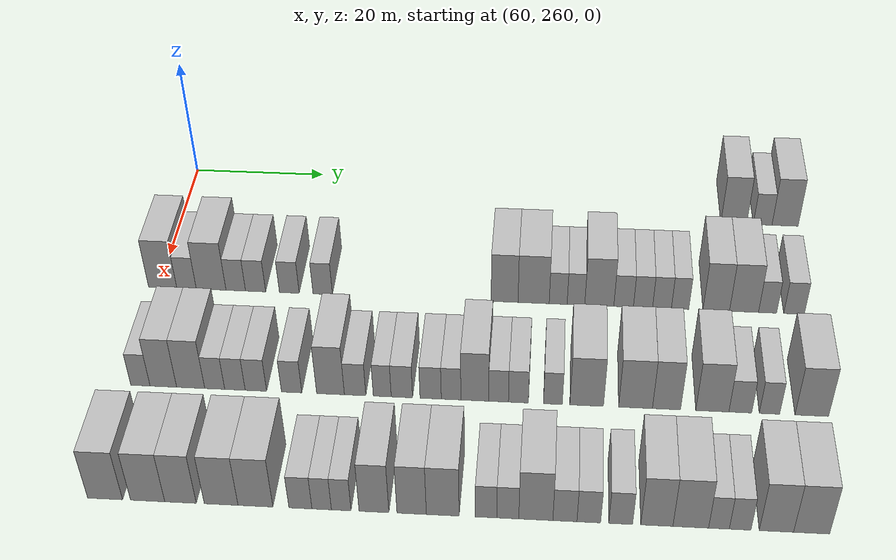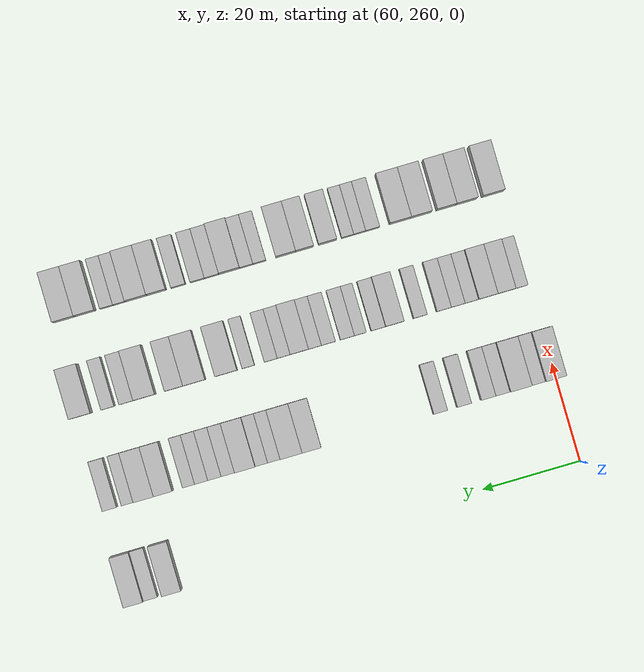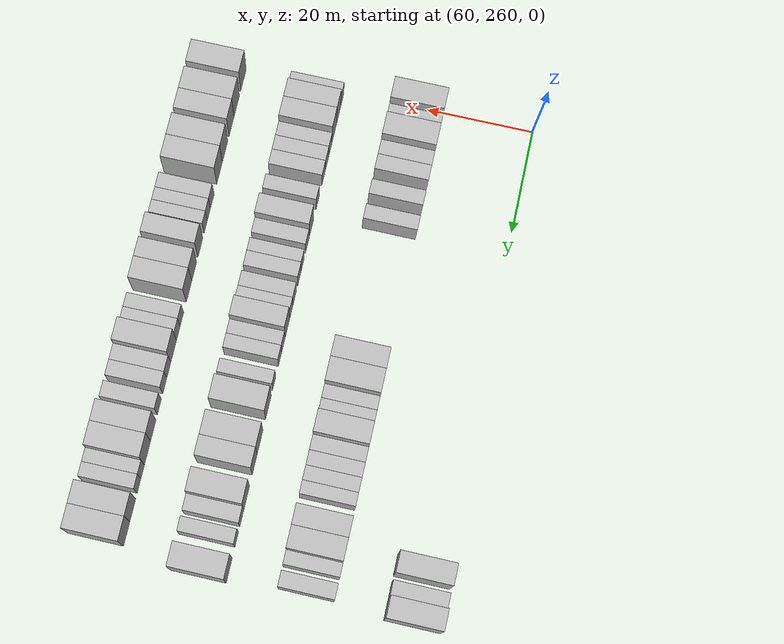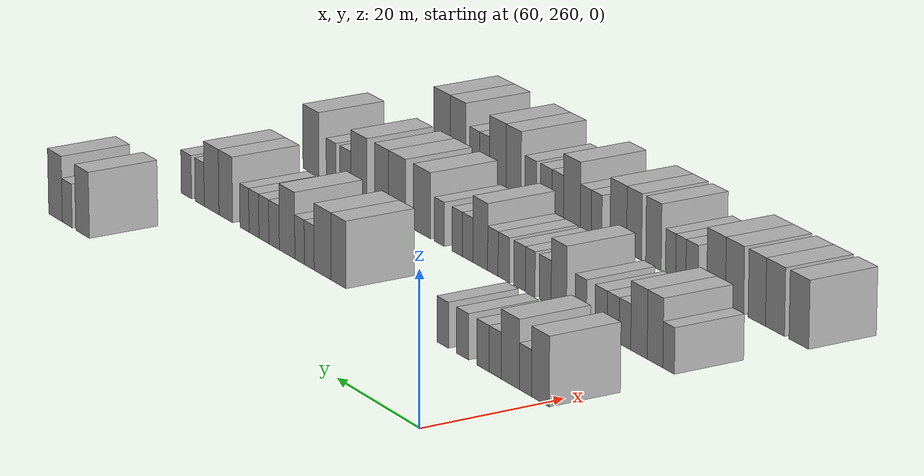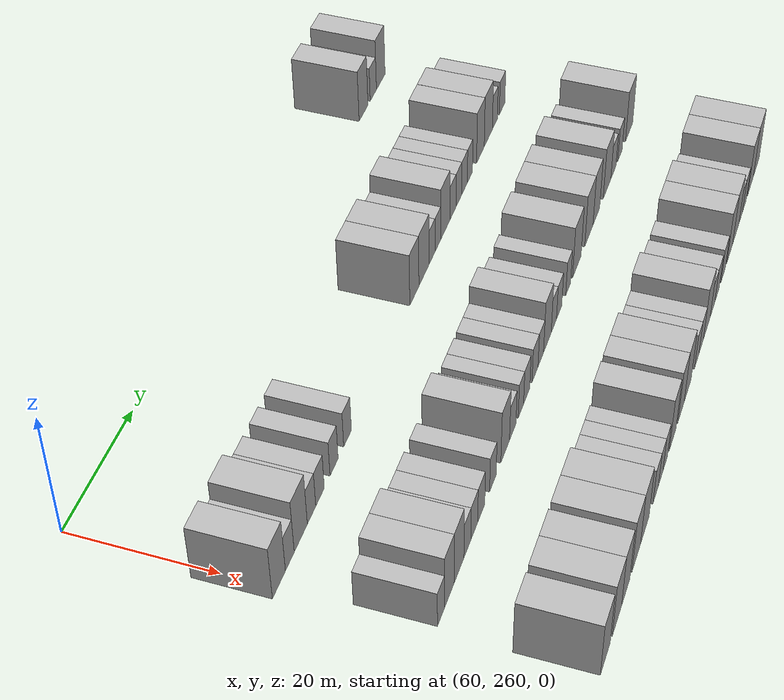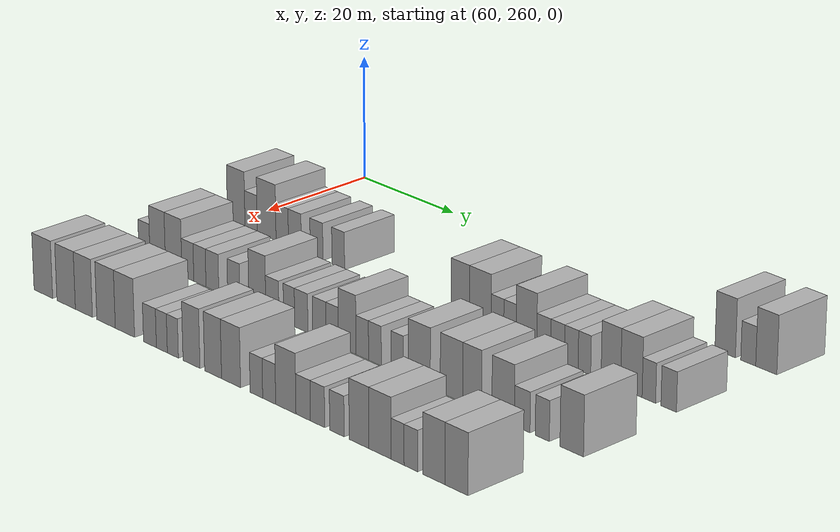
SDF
<sdf version="1.6">
 <world name="default">
  <model name="building_522">
   <static>1</static>
   <pose>63.0000 343.8671 0 0.000000 0.000000 0.000000</pose>
   <link name="link">
    <pose>0 0 4.50 0 0 0</pose>
    <collision name="collision"><geometry><box><size>10.0000 3.9004 9.0000</size></box></geometry></collision>
    <visual name="visual">
     <cast_shadows>0</cast_shadows>
     <geometry><box><size>10.0000 3.9004 9.0000</size></box></geometry>
     <material>
      <script>
       <uri>model://HANNAS_wall/materials/scripts</uri>
       <uri>model://HANNAS_wall/materials/textures</uri>
       <name>vrc/HANNAS_wall</name>
      </script>
     </material>
    </visual>
   </link>
  </model>
  <model name="building_523">
   <static>1</static>
   <pose>63.0000 348.2247 0 0.000000 0.000000 0.000000</pose>
   <link name="link">
    <pose>0 0 3.00 0 0 0</pose>
    <collision name="collision"><geometry><box><size>10.0000 2.8149 6.0000</size></box></geometry></collision>
    <visual name="visual">
     <cast_shadows>0</cast_shadows>
     <geometry><box><size>10.0000 2.8149 6.0000</size></box></geometry>
     <material>
      <script>
       <uri>model://HANNAS_wall/materials/scripts</uri>
       <uri>model://HANNAS_wall/materials/textures</uri>
       <name>vrc/HANNAS_wall</name>
      </script>
     </material>
    </visual>
   </link>
  </model>
  <model name="building_524">
   <static>1</static>
   <pose>63.0000 351.5997 0 0.000000 0.000000 0.000000</pose>
   <link name="link">
    <pose>0 0 4.50 0 0 0</pose>
    <collision name="collision"><geometry><box><size>10.0000 3.9350 9.0000</size></box></geometry></collision>
    <visual name="visual">
     <cast_shadows>0</cast_shadows>
     <geometry><box><size>10.0000 3.9350 9.0000</size></box></geometry>
     <material>
      <script>
       <uri>model://HANNAS_wall/materials/scripts</uri>
       <uri>model://HANNAS_wall/materials/textures</uri>
       <name>vrc/HANNAS_wall</name>
      </script>
     </material>
    </visual>
   </link>
  </model>
  <model name="building_676">
   <static>1</static>
   <pose>82.0000 260.5434 0 0.000000 0.000000 0.000000</pose>
   <link name="link">
    <pose>0 0 4.50 0 0 0</pose>
    <collision name="collision"><geometry><box><size>10.0000 4.1204 9.0000</size></box></geometry></collision>
    <visual name="visual">
     <cast_shadows>0</cast_shadows>
     <geometry><box><size>10.0000 4.1204 9.0000</size></box></geometry>
     <material>
      <script>
       <uri>model://HANNAS_wall/materials/scripts</uri>
       <uri>model://HANNAS_wall/materials/textures</uri>
       <name>vrc/HANNAS_wall</name>
      </script>
     </material>
    </visual>
   </link>
  </model>
  <model name="building_677">
   <static>1</static>
   <pose>82.0000 264.0253 0 0.000000 0.000000 0.000000</pose>
   <link name="link">
    <pose>0 0 3.00 0 0 0</pose>
    <collision name="collision"><geometry><box><size>10.0000 2.8435 6.0000</size></box></geometry></collision>
    <visual name="visual">
     <cast_shadows>0</cast_shadows>
     <geometry><box><size>10.0000 2.8435 6.0000</size></box></geometry>
     <material>
      <script>
       <uri>model://HANNAS_wall/materials/scripts</uri>
       <uri>model://HANNAS_wall/materials/textures</uri>
       <name>vrc/HANNAS_wall</name>
      </script>
     </material>
    </visual>
   </link>
  </model>
  <model name="building_678">
   <static>1</static>
   <pose>82.0000 267.6121 0 0.000000 0.000000 0.000000</pose>
   <link name="link">
    <pose>0 0 4.50 0 0 0</pose>
    <collision name="collision"><geometry><box><size>10.0000 4.3301 9.0000</size></box></geometry></collision>
    <visual name="visual">
     <cast_shadows>0</cast_shadows>
     <geometry><box><size>10.0000 4.3301 9.0000</size></box></geometry>
     <material>
      <script>
       <uri>model://HANNAS_wall/materials/scripts</uri>
       <uri>model://HANNAS_wall/materials/textures</uri>
       <name>vrc/HANNAS_wall</name>
      </script>
     </material>
    </visual>
   </link>
  </model>
  <model name="building_679">
   <static>1</static>
   <pose>82.0000 271.1962 0 0.000000 0.000000 0.000000</pose>
   <link name="link">
    <pose>0 0 3.00 0 0 0</pose>
    <collision name="collision"><geometry><box><size>10.0000 2.8381 6.0000</size></box></geometry></collision>
    <visual name="visual">
     <cast_shadows>0</cast_shadows>
     <geometry><box><size>10.0000 2.8381 6.0000</size></box></geometry>
     <material>
      <script>
       <uri>model://HANNAS_wall/materials/scripts</uri>
       <uri>model://HANNAS_wall/materials/textures</uri>
       <name>vrc/HANNAS_wall</name>
      </script>
     </material>
    </visual>
   </link>
  </model>
  <model name="building_680">
   <static>1</static>
   <pose>82.0000 274.0770 0 0.000000 0.000000 0.000000</pose>
   <link name="link">
    <pose>0 0 3.00 0 0 0</pose>
    <collision name="collision"><geometry><box><size>10.0000 2.9234 6.0000</size></box></geometry></collision>
    <visual name="visual">
     <cast_shadows>0</cast_shadows>
     <geometry><box><size>10.0000 2.9234 6.0000</size></box></geometry>
     <material>
      <script>
       <uri>model://HANNAS_wall/materials/scripts</uri>
       <uri>model://HANNAS_wall/materials/textures</uri>
       <name>vrc/HANNAS_wall</name>
      </script>
     </material>
    </visual>
   </link>
  </model>
  <model name="building_681">
   <static>1</static>
   <pose>82.0000 278.9706 0 0.000000 0.000000 0.000000</pose>
   <link name="link">
    <pose>0 0 3.00 0 0 0</pose>
    <collision name="collision"><geometry><box><size>10.0000 2.8638 6.0000</size></box></geometry></collision>
    <visual name="visual">
     <cast_shadows>0</cast_shadows>
     <geometry><box><size>10.0000 2.8638 6.0000</size></box></geometry>
     <material>
      <script>
       <uri>model://HANNAS_wall/materials/scripts</uri>
       <uri>model://HANNAS_wall/materials/textures</uri>
       <name>vrc/HANNAS_wall</name>
      </script>
     </material>
    </visual>
   </link>
  </model>
  <model name="building_682">
   <static>1</static>
   <pose>82.0000 283.8026 0 0.000000 0.000000 0.000000</pose>
   <link name="link">
    <pose>0 0 3.00 0 0 0</pose>
    <collision name="collision"><geometry><box><size>10.0000 2.8003 6.0000</size></box></geometry></collision>
    <visual name="visual">
     <cast_shadows>0</cast_shadows>
     <geometry><box><size>10.0000 2.8003 6.0000</size></box></geometry>
     <material>
      <script>
       <uri>model://HANNAS_wall/materials/scripts</uri>
       <uri>model://HANNAS_wall/materials/textures</uri>
       <name>vrc/HANNAS_wall</name>
      </script>
     </material>
    </visual>
   </link>
  </model>
  <model name="building_683">
   <static>1</static>
   <pose>82.0000 309.9607 0 0.000000 0.000000 0.000000</pose>
   <link name="link">
    <pose>0 0 4.50 0 0 0</pose>
    <collision name="collision"><geometry><box><size>10.0000 3.8386 9.0000</size></box></geometry></collision>
    <visual name="visual">
     <cast_shadows>0</cast_shadows>
     <geometry><box><size>10.0000 3.8386 9.0000</size></box></geometry>
     <material>
      <script>
       <uri>model://HANNAS_wall/materials/scripts</uri>
       <uri>model://HANNAS_wall/materials/textures</uri>
       <name>vrc/HANNAS_wall</name>
      </script>
     </material>
    </visual>
   </link>
  </model>
  <model name="building_684">
   <static>1</static>
   <pose>82.0000 314.1011 0 0.000000 0.000000 0.000000</pose>
   <link name="link">
    <pose>0 0 4.50 0 0 0</pose>
    <collision name="collision"><geometry><box><size>10.0000 4.4422 9.0000</size></box></geometry></collision>
    <visual name="visual">
     <cast_shadows>0</cast_shadows>
     <geometry><box><size>10.0000 4.4422 9.0000</size></box></geometry>
     <material>
      <script>
       <uri>model://HANNAS_wall/materials/scripts</uri>
       <uri>model://HANNAS_wall/materials/textures</uri>
       <name>vrc/HANNAS_wall</name>
      </script>
     </material>
    </visual>
   </link>
  </model>
  <model name="building_685">
   <static>1</static>
   <pose>82.0000 317.5993 0 0.000000 0.000000 0.000000</pose>
   <link name="link">
    <pose>0 0 3.00 0 0 0</pose>
    <collision name="collision"><geometry><box><size>10.0000 2.5542 6.0000</size></box></geometry></collision>
    <visual name="visual">
     <cast_shadows>0</cast_shadows>
     <geometry><box><size>10.0000 2.5542 6.0000</size></box></geometry>
     <material>
      <script>
       <uri>model://HANNAS_wall/materials/scripts</uri>
       <uri>model://HANNAS_wall/materials/textures</uri>
       <name>vrc/HANNAS_wall</name>
      </script>
     </material>
    </visual>
   </link>
  </model>
  <model name="building_686">
   <static>1</static>
   <pose>82.0000 320.1300 0 0.000000 0.000000 0.000000</pose>
   <link name="link">
    <pose>0 0 3.00 0 0 0</pose>
    <collision name="collision"><geometry><box><size>10.0000 2.5072 6.0000</size></box></geometry></collision>
    <visual name="visual">
     <cast_shadows>0</cast_shadows>
     <geometry><box><size>10.0000 2.5072 6.0000</size></box></geometry>
     <material>
      <script>
       <uri>model://HANNAS_wall/materials/scripts</uri>
       <uri>model://HANNAS_wall/materials/textures</uri>
       <name>vrc/HANNAS_wall</name>
      </script>
     </material>
    </visual>
   </link>
  </model>
  <model name="building_687">
   <static>1</static>
   <pose>82.0000 323.4529 0 0.000000 0.000000 0.000000</pose>
   <link name="link">
    <pose>0 0 4.50 0 0 0</pose>
    <collision name="collision"><geometry><box><size>10.0000 4.1386 9.0000</size></box></geometry></collision>
    <visual name="visual">
     <cast_shadows>0</cast_shadows>
     <geometry><box><size>10.0000 4.1386 9.0000</size></box></geometry>
     <material>
      <script>
       <uri>model://HANNAS_wall/materials/scripts</uri>
       <uri>model://HANNAS_wall/materials/textures</uri>
       <name>vrc/HANNAS_wall</name>
      </script>
     </material>
    </visual>
   </link>
  </model>
  <model name="building_688">
   <static>1</static>
   <pose>82.0000 326.9126 0 0.000000 0.000000 0.000000</pose>
   <link name="link">
    <pose>0 0 3.00 0 0 0</pose>
    <collision name="collision"><geometry><box><size>10.0000 2.7808 6.0000</size></box></geometry></collision>
    <visual name="visual">
     <cast_shadows>0</cast_shadows>
     <geometry><box><size>10.0000 2.7808 6.0000</size></box></geometry>
     <material>
      <script>
       <uri>model://HANNAS_wall/materials/scripts</uri>
       <uri>model://HANNAS_wall/materials/textures</uri>
       <name>vrc/HANNAS_wall</name>
      </script>
     </material>
    </visual>
   </link>
  </model>
  <model name="building_689">
   <static>1</static>
   <pose>82.0000 329.6565 0 0.000000 0.000000 0.000000</pose>
   <link name="link">
    <pose>0 0 3.00 0 0 0</pose>
    <collision name="collision"><geometry><box><size>10.0000 2.7070 6.0000</size></box></geometry></collision>
    <visual name="visual">
     <cast_shadows>0</cast_shadows>
     <geometry><box><size>10.0000 2.7070 6.0000</size></box></geometry>
     <material>
      <script>
       <uri>model://HANNAS_wall/materials/scripts</uri>
       <uri>model://HANNAS_wall/materials/textures</uri>
       <name>vrc/HANNAS_wall</name>
      </script>
     </material>
    </visual>
   </link>
  </model>
  <model name="building_690">
   <static>1</static>
   <pose>82.0000 332.3422 0 0.000000 0.000000 0.000000</pose>
   <link name="link">
    <pose>0 0 3.00 0 0 0</pose>
    <collision name="collision"><geometry><box><size>10.0000 2.6645 6.0000</size></box></geometry></collision>
    <visual name="visual">
     <cast_shadows>0</cast_shadows>
     <geometry><box><size>10.0000 2.6645 6.0000</size></box></geometry>
     <material>
      <script>
       <uri>model://HANNAS_wall/materials/scripts</uri>
       <uri>model://HANNAS_wall/materials/textures</uri>
       <name>vrc/HANNAS_wall</name>
      </script>
     </material>
    </visual>
   </link>
  </model>
  <model name="building_691">
   <static>1</static>
   <pose>82.0000 334.9056 0 0.000000 0.000000 0.000000</pose>
   <link name="link">
    <pose>0 0 3.00 0 0 0</pose>
    <collision name="collision"><geometry><box><size>10.0000 2.4622 6.0000</size></box></geometry></collision>
    <visual name="visual">
     <cast_shadows>0</cast_shadows>
     <geometry><box><size>10.0000 2.4622 6.0000</size></box></geometry>
     <material>
      <script>
       <uri>model://HANNAS_wall/materials/scripts</uri>
       <uri>model://HANNAS_wall/materials/textures</uri>
       <name>vrc/HANNAS_wall</name>
      </script>
     </material>
    </visual>
   </link>
  </model>
  <model name="building_692">
   <static>1</static>
   <pose>82.0000 340.0133 0 0.000000 0.000000 0.000000</pose>
   <link name="link">
    <pose>0 0 4.50 0 0 0</pose>
    <collision name="collision"><geometry><box><size>10.0000 3.7532 9.0000</size></box></geometry></collision>
    <visual name="visual">
     <cast_shadows>0</cast_shadows>
     <geometry><box><size>10.0000 3.7532 9.0000</size></box></geometry>
     <material>
      <script>
       <uri>model://HANNAS_wall/materials/scripts</uri>
       <uri>model://HANNAS_wall/materials/textures</uri>
       <name>vrc/HANNAS_wall</name>
      </script>
     </material>
    </visual>
   </link>
  </model>
  <model name="building_693">
   <static>1</static>
   <pose>82.0000 343.9332 0 0.000000 0.000000 0.000000</pose>
   <link name="link">
    <pose>0 0 4.50 0 0 0</pose>
    <collision name="collision"><geometry><box><size>10.0000 4.0864 9.0000</size></box></geometry></collision>
    <visual name="visual">
     <cast_shadows>0</cast_shadows>
     <geometry><box><size>10.0000 4.0864 9.0000</size></box></geometry>
     <material>
      <script>
       <uri>model://HANNAS_wall/materials/scripts</uri>
       <uri>model://HANNAS_wall/materials/textures</uri>
       <name>vrc/HANNAS_wall</name>
      </script>
     </material>
    </visual>
   </link>
  </model>
  <model name="building_694">
   <static>1</static>
   <pose>82.0000 347.2513 0 0.000000 0.000000 0.000000</pose>
   <link name="link">
    <pose>0 0 3.00 0 0 0</pose>
    <collision name="collision"><geometry><box><size>10.0000 2.5499 6.0000</size></box></geometry></collision>
    <visual name="visual">
     <cast_shadows>0</cast_shadows>
     <geometry><box><size>10.0000 2.5499 6.0000</size></box></geometry>
     <material>
      <script>
       <uri>model://HANNAS_wall/materials/scripts</uri>
       <uri>model://HANNAS_wall/materials/textures</uri>
       <name>vrc/HANNAS_wall</name>
      </script>
     </material>
    </visual>
   </link>
  </model>
  <model name="building_695">
   <static>1</static>
   <pose>82.0000 350.9714 0 0.000000 0.000000 0.000000</pose>
   <link name="link">
    <pose>0 0 3.00 0 0 0</pose>
    <collision name="collision"><geometry><box><size>10.0000 2.8904 6.0000</size></box></geometry></collision>
    <visual name="visual">
     <cast_shadows>0</cast_shadows>
     <geometry><box><size>10.0000 2.8904 6.0000</size></box></geometry>
     <material>
      <script>
       <uri>model://HANNAS_wall/materials/scripts</uri>
       <uri>model://HANNAS_wall/materials/textures</uri>
       <name>vrc/HANNAS_wall</name>
      </script>
     </material>
    </visual>
   </link>
  </model>
  <model name="building_848">
   <static>1</static>
   <pose>101.0000 261.8542 0 0.000000 0.000000 0.000000</pose>
   <link name="link">
    <pose>0 0 3.00 0 0 0</pose>
    <collision name="collision"><geometry><box><size>10.0000 2.6184 6.0000</size></box></geometry></collision>
    <visual name="visual">
     <cast_shadows>0</cast_shadows>
     <geometry><box><size>10.0000 2.6184 6.0000</size></box></geometry>
     <material>
      <script>
       <uri>model://HANNAS_wall/materials/scripts</uri>
       <uri>model://HANNAS_wall/materials/textures</uri>
       <name>vrc/HANNAS_wall</name>
      </script>
     </material>
    </visual>
   </link>
  </model>
  <model name="building_849">
   <static>1</static>
   <pose>101.0000 264.9686 0 0.000000 0.000000 0.000000</pose>
   <link name="link">
    <pose>0 0 4.50 0 0 0</pose>
    <collision name="collision"><geometry><box><size>10.0000 3.6103 9.0000</size></box></geometry></collision>
    <visual name="visual">
     <cast_shadows>0</cast_shadows>
     <geometry><box><size>10.0000 3.6103 9.0000</size></box></geometry>
     <material>
      <script>
       <uri>model://HANNAS_wall/materials/scripts</uri>
       <uri>model://HANNAS_wall/materials/textures</uri>
       <name>vrc/HANNAS_wall</name>
      </script>
     </material>
    </visual>
   </link>
  </model>
  <model name="building_850">
   <static>1</static>
   <pose>101.0000 268.6789 0 0.000000 0.000000 0.000000</pose>
   <link name="link">
    <pose>0 0 4.50 0 0 0</pose>
    <collision name="collision"><geometry><box><size>10.0000 3.8104 9.0000</size></box></geometry></collision>
    <visual name="visual">
     <cast_shadows>0</cast_shadows>
     <geometry><box><size>10.0000 3.8104 9.0000</size></box></geometry>
     <material>
      <script>
       <uri>model://HANNAS_wall/materials/scripts</uri>
       <uri>model://HANNAS_wall/materials/textures</uri>
       <name>vrc/HANNAS_wall</name>
      </script>
     </material>
    </visual>
   </link>
  </model>
  <model name="building_851">
   <static>1</static>
   <pose>101.0000 271.9367 0 0.000000 0.000000 0.000000</pose>
   <link name="link">
    <pose>0 0 3.00 0 0 0</pose>
    <collision name="collision"><geometry><box><size>10.0000 2.7052 6.0000</size></box></geometry></collision>
    <visual name="visual">
     <cast_shadows>0</cast_shadows>
     <geometry><box><size>10.0000 2.7052 6.0000</size></box></geometry>
     <material>
      <script>
       <uri>model://HANNAS_wall/materials/scripts</uri>
       <uri>model://HANNAS_wall/materials/textures</uri>
       <name>vrc/HANNAS_wall</name>
      </script>
     </material>
    </visual>
   </link>
  </model>
  <model name="building_852">
   <static>1</static>
   <pose>101.0000 274.6758 0 0.000000 0.000000 0.000000</pose>
   <link name="link">
    <pose>0 0 3.00 0 0 0</pose>
    <collision name="collision"><geometry><box><size>10.0000 2.7730 6.0000</size></box></geometry></collision>
    <visual name="visual">
     <cast_shadows>0</cast_shadows>
     <geometry><box><size>10.0000 2.7730 6.0000</size></box></geometry>
     <material>
      <script>
       <uri>model://HANNAS_wall/materials/scripts</uri>
       <uri>model://HANNAS_wall/materials/textures</uri>
       <name>vrc/HANNAS_wall</name>
      </script>
     </material>
    </visual>
   </link>
  </model>
  <model name="building_853">
   <static>1</static>
   <pose>101.0000 277.5107 0 0.000000 0.000000 0.000000</pose>
   <link name="link">
    <pose>0 0 3.00 0 0 0</pose>
    <collision name="collision"><geometry><box><size>10.0000 2.8969 6.0000</size></box></geometry></collision>
    <visual name="visual">
     <cast_shadows>0</cast_shadows>
     <geometry><box><size>10.0000 2.8969 6.0000</size></box></geometry>
     <material>
      <script>
       <uri>model://HANNAS_wall/materials/scripts</uri>
       <uri>model://HANNAS_wall/materials/textures</uri>
       <name>vrc/HANNAS_wall</name>
      </script>
     </material>
    </visual>
   </link>
  </model>
  <model name="building_854">
   <static>1</static>
   <pose>101.0000 282.3296 0 0.000000 0.000000 0.000000</pose>
   <link name="link">
    <pose>0 0 3.00 0 0 0</pose>
    <collision name="collision"><geometry><box><size>10.0000 2.7409 6.0000</size></box></geometry></collision>
    <visual name="visual">
     <cast_shadows>0</cast_shadows>
     <geometry><box><size>10.0000 2.7409 6.0000</size></box></geometry>
     <material>
      <script>
       <uri>model://HANNAS_wall/materials/scripts</uri>
       <uri>model://HANNAS_wall/materials/textures</uri>
       <name>vrc/HANNAS_wall</name>
      </script>
     </material>
    </visual>
   </link>
  </model>
  <model name="building_855">
   <static>1</static>
   <pose>101.0000 287.5660 0 0.000000 0.000000 0.000000</pose>
   <link name="link">
    <pose>0 0 4.50 0 0 0</pose>
    <collision name="collision"><geometry><box><size>10.0000 3.7320 9.0000</size></box></geometry></collision>
    <visual name="visual">
     <cast_shadows>0</cast_shadows>
     <geometry><box><size>10.0000 3.7320 9.0000</size></box></geometry>
     <material>
      <script>
       <uri>model://HANNAS_wall/materials/scripts</uri>
       <uri>model://HANNAS_wall/materials/textures</uri>
       <name>vrc/HANNAS_wall</name>
      </script>
     </material>
    </visual>
   </link>
  </model>
  <model name="building_856">
   <static>1</static>
   <pose>101.0000 290.8712 0 0.000000 0.000000 0.000000</pose>
   <link name="link">
    <pose>0 0 3.00 0 0 0</pose>
    <collision name="collision"><geometry><box><size>10.0000 2.8784 6.0000</size></box></geometry></collision>
    <visual name="visual">
     <cast_shadows>0</cast_shadows>
     <geometry><box><size>10.0000 2.8784 6.0000</size></box></geometry>
     <material>
      <script>
       <uri>model://HANNAS_wall/materials/scripts</uri>
       <uri>model://HANNAS_wall/materials/textures</uri>
       <name>vrc/HANNAS_wall</name>
      </script>
     </material>
    </visual>
   </link>
  </model>
  <model name="building_857">
   <static>1</static>
   <pose>101.0000 294.5121 0 0.000000 0.000000 0.000000</pose>
   <link name="link">
    <pose>0 0 3.00 0 0 0</pose>
    <collision name="collision"><geometry><box><size>10.0000 2.4033 6.0000</size></box></geometry></collision>
    <visual name="visual">
     <cast_shadows>0</cast_shadows>
     <geometry><box><size>10.0000 2.4033 6.0000</size></box></geometry>
     <material>
      <script>
       <uri>model://HANNAS_wall/materials/scripts</uri>
       <uri>model://HANNAS_wall/materials/textures</uri>
       <name>vrc/HANNAS_wall</name>
      </script>
     </material>
    </visual>
   </link>
  </model>
  <model name="building_858">
   <static>1</static>
   <pose>101.0000 297.1397 0 0.000000 0.000000 0.000000</pose>
   <link name="link">
    <pose>0 0 3.00 0 0 0</pose>
    <collision name="collision"><geometry><box><size>10.0000 2.8518 6.0000</size></box></geometry></collision>
    <visual name="visual">
     <cast_shadows>0</cast_shadows>
     <geometry><box><size>10.0000 2.8518 6.0000</size></box></geometry>
     <material>
      <script>
       <uri>model://HANNAS_wall/materials/scripts</uri>
       <uri>model://HANNAS_wall/materials/textures</uri>
       <name>vrc/HANNAS_wall</name>
      </script>
     </material>
    </visual>
   </link>
  </model>
  <model name="building_859">
   <static>1</static>
   <pose>101.0000 300.9881 0 0.000000 0.000000 0.000000</pose>
   <link name="link">
    <pose>0 0 3.00 0 0 0</pose>
    <collision name="collision"><geometry><box><size>10.0000 2.8452 6.0000</size></box></geometry></collision>
    <visual name="visual">
     <cast_shadows>0</cast_shadows>
     <geometry><box><size>10.0000 2.8452 6.0000</size></box></geometry>
     <material>
      <script>
       <uri>model://HANNAS_wall/materials/scripts</uri>
       <uri>model://HANNAS_wall/materials/textures</uri>
       <name>vrc/HANNAS_wall</name>
      </script>
     </material>
    </visual>
   </link>
  </model>
  <model name="building_860">
   <static>1</static>
   <pose>101.0000 303.7197 0 0.000000 0.000000 0.000000</pose>
   <link name="link">
    <pose>0 0 3.00 0 0 0</pose>
    <collision name="collision"><geometry><box><size>10.0000 2.6179 6.0000</size></box></geometry></collision>
    <visual name="visual">
     <cast_shadows>0</cast_shadows>
     <geometry><box><size>10.0000 2.6179 6.0000</size></box></geometry>
     <material>
      <script>
       <uri>model://HANNAS_wall/materials/scripts</uri>
       <uri>model://HANNAS_wall/materials/textures</uri>
       <name>vrc/HANNAS_wall</name>
      </script>
     </material>
    </visual>
   </link>
  </model>
  <model name="building_861">
   <static>1</static>
   <pose>101.0000 306.8829 0 0.000000 0.000000 0.000000</pose>
   <link name="link">
    <pose>0 0 4.50 0 0 0</pose>
    <collision name="collision"><geometry><box><size>10.0000 3.7085 9.0000</size></box></geometry></collision>
    <visual name="visual">
     <cast_shadows>0</cast_shadows>
     <geometry><box><size>10.0000 3.7085 9.0000</size></box></geometry>
     <material>
      <script>
       <uri>model://HANNAS_wall/materials/scripts</uri>
       <uri>model://HANNAS_wall/materials/textures</uri>
       <name>vrc/HANNAS_wall</name>
      </script>
     </material>
    </visual>
   </link>
  </model>
  <model name="building_862">
   <static>1</static>
   <pose>101.0000 310.0461 0 0.000000 0.000000 0.000000</pose>
   <link name="link">
    <pose>0 0 3.00 0 0 0</pose>
    <collision name="collision"><geometry><box><size>10.0000 2.6180 6.0000</size></box></geometry></collision>
    <visual name="visual">
     <cast_shadows>0</cast_shadows>
     <geometry><box><size>10.0000 2.6180 6.0000</size></box></geometry>
     <material>
      <script>
       <uri>model://HANNAS_wall/materials/scripts</uri>
       <uri>model://HANNAS_wall/materials/textures</uri>
       <name>vrc/HANNAS_wall</name>
      </script>
     </material>
    </visual>
   </link>
  </model>
  <model name="building_863">
   <static>1</static>
   <pose>101.0000 312.6766 0 0.000000 0.000000 0.000000</pose>
   <link name="link">
    <pose>0 0 3.00 0 0 0</pose>
    <collision name="collision"><geometry><box><size>10.0000 2.6430 6.0000</size></box></geometry></collision>
    <visual name="visual">
     <cast_shadows>0</cast_shadows>
     <geometry><box><size>10.0000 2.6430 6.0000</size></box></geometry>
     <material>
      <script>
       <uri>model://HANNAS_wall/materials/scripts</uri>
       <uri>model://HANNAS_wall/materials/textures</uri>
       <name>vrc/HANNAS_wall</name>
      </script>
     </material>
    </visual>
   </link>
  </model>
  <model name="building_864">
   <static>1</static>
   <pose>101.0000 317.2483 0 0.000000 0.000000 0.000000</pose>
   <link name="link">
    <pose>0 0 3.00 0 0 0</pose>
    <collision name="collision"><geometry><box><size>10.0000 2.5005 6.0000</size></box></geometry></collision>
    <visual name="visual">
     <cast_shadows>0</cast_shadows>
     <geometry><box><size>10.0000 2.5005 6.0000</size></box></geometry>
     <material>
      <script>
       <uri>model://HANNAS_wall/materials/scripts</uri>
       <uri>model://HANNAS_wall/materials/textures</uri>
       <name>vrc/HANNAS_wall</name>
      </script>
     </material>
    </visual>
   </link>
  </model>
  <model name="building_865">
   <static>1</static>
   <pose>101.0000 321.7239 0 0.000000 0.000000 0.000000</pose>
   <link name="link">
    <pose>0 0 4.50 0 0 0</pose>
    <collision name="collision"><geometry><box><size>10.0000 4.4506 9.0000</size></box></geometry></collision>
    <visual name="visual">
     <cast_shadows>0</cast_shadows>
     <geometry><box><size>10.0000 4.4506 9.0000</size></box></geometry>
     <material>
      <script>
       <uri>model://HANNAS_wall/materials/scripts</uri>
       <uri>model://HANNAS_wall/materials/textures</uri>
       <name>vrc/HANNAS_wall</name>
      </script>
     </material>
    </visual>
   </link>
  </model>
  <model name="building_866">
   <static>1</static>
   <pose>101.0000 328.1807 0 0.000000 0.000000 0.000000</pose>
   <link name="link">
    <pose>0 0 4.50 0 0 0</pose>
    <collision name="collision"><geometry><box><size>10.0000 4.4630 9.0000</size></box></geometry></collision>
    <visual name="visual">
     <cast_shadows>0</cast_shadows>
     <geometry><box><size>10.0000 4.4630 9.0000</size></box></geometry>
     <material>
      <script>
       <uri>model://HANNAS_wall/materials/scripts</uri>
       <uri>model://HANNAS_wall/materials/textures</uri>
       <name>vrc/HANNAS_wall</name>
      </script>
     </material>
    </visual>
   </link>
  </model>
  <model name="building_867">
   <static>1</static>
   <pose>101.0000 332.2624 0 0.000000 0.000000 0.000000</pose>
   <link name="link">
    <pose>0 0 4.50 0 0 0</pose>
    <collision name="collision"><geometry><box><size>10.0000 3.7003 9.0000</size></box></geometry></collision>
    <visual name="visual">
     <cast_shadows>0</cast_shadows>
     <geometry><box><size>10.0000 3.7003 9.0000</size></box></geometry>
     <material>
      <script>
       <uri>model://HANNAS_wall/materials/scripts</uri>
       <uri>model://HANNAS_wall/materials/textures</uri>
       <name>vrc/HANNAS_wall</name>
      </script>
     </material>
    </visual>
   </link>
  </model>
  <model name="building_868">
   <static>1</static>
   <pose>101.0000 338.2871 0 0.000000 0.000000 0.000000</pose>
   <link name="link">
    <pose>0 0 4.50 0 0 0</pose>
    <collision name="collision"><geometry><box><size>10.0000 4.3491 9.0000</size></box></geometry></collision>
    <visual name="visual">
     <cast_shadows>0</cast_shadows>
     <geometry><box><size>10.0000 4.3491 9.0000</size></box></geometry>
     <material>
      <script>
       <uri>model://HANNAS_wall/materials/scripts</uri>
       <uri>model://HANNAS_wall/materials/textures</uri>
       <name>vrc/HANNAS_wall</name>
      </script>
     </material>
    </visual>
   </link>
  </model>
  <model name="building_869">
   <static>1</static>
   <pose>101.0000 341.9555 0 0.000000 0.000000 0.000000</pose>
   <link name="link">
    <pose>0 0 3.00 0 0 0</pose>
    <collision name="collision"><geometry><box><size>10.0000 2.9877 6.0000</size></box></geometry></collision>
    <visual name="visual">
     <cast_shadows>0</cast_shadows>
     <geometry><box><size>10.0000 2.9877 6.0000</size></box></geometry>
     <material>
      <script>
       <uri>model://HANNAS_wall/materials/scripts</uri>
       <uri>model://HANNAS_wall/materials/textures</uri>
       <name>vrc/HANNAS_wall</name>
      </script>
     </material>
    </visual>
   </link>
  </model>
  <model name="building_870">
   <static>1</static>
   <pose>101.0000 345.7819 0 0.000000 0.000000 0.000000</pose>
   <link name="link">
    <pose>0 0 3.00 0 0 0</pose>
    <collision name="collision"><geometry><box><size>10.0000 2.6651 6.0000</size></box></geometry></collision>
    <visual name="visual">
     <cast_shadows>0</cast_shadows>
     <geometry><box><size>10.0000 2.6651 6.0000</size></box></geometry>
     <material>
      <script>
       <uri>model://HANNAS_wall/materials/scripts</uri>
       <uri>model://HANNAS_wall/materials/textures</uri>
       <name>vrc/HANNAS_wall</name>
      </script>
     </material>
    </visual>
   </link>
  </model>
  <model name="building_871">
   <static>1</static>
   <pose>101.0000 351.3101 0 0.000000 0.000000 0.000000</pose>
   <link name="link">
    <pose>0 0 4.50 0 0 0</pose>
    <collision name="collision"><geometry><box><size>10.0000 4.3912 9.0000</size></box></geometry></collision>
    <visual name="visual">
     <cast_shadows>0</cast_shadows>
     <geometry><box><size>10.0000 4.3912 9.0000</size></box></geometry>
     <material>
      <script>
       <uri>model://HANNAS_wall/materials/scripts</uri>
       <uri>model://HANNAS_wall/materials/textures</uri>
       <name>vrc/HANNAS_wall</name>
      </script>
     </material>
    </visual>
   </link>
  </model>
  <model name="building_1024">
   <static>1</static>
   <pose>120.0000 261.9646 0 0.000000 0.000000 0.000000</pose>
   <link name="link">
    <pose>0 0 4.50 0 0 0</pose>
    <collision name="collision"><geometry><box><size>10.0000 4.4077 9.0000</size></box></geometry></collision>
    <visual name="visual">
     <cast_shadows>0</cast_shadows>
     <geometry><box><size>10.0000 4.4077 9.0000</size></box></geometry>
     <material>
      <script>
       <uri>model://HANNAS_wall/materials/scripts</uri>
       <uri>model://HANNAS_wall/materials/textures</uri>
       <name>vrc/HANNAS_wall</name>
      </script>
     </material>
    </visual>
   </link>
  </model>
  <model name="building_1025">
   <static>1</static>
   <pose>120.0000 267.3249 0 0.000000 0.000000 0.000000</pose>
   <link name="link">
    <pose>0 0 4.50 0 0 0</pose>
    <collision name="collision"><geometry><box><size>10.0000 4.3131 9.0000</size></box></geometry></collision>
    <visual name="visual">
     <cast_shadows>0</cast_shadows>
     <geometry><box><size>10.0000 4.3131 9.0000</size></box></geometry>
     <material>
      <script>
       <uri>model://HANNAS_wall/materials/scripts</uri>
       <uri>model://HANNAS_wall/materials/textures</uri>
       <name>vrc/HANNAS_wall</name>
      </script>
     </material>
    </visual>
   </link>
  </model>
  <model name="building_1026">
   <static>1</static>
   <pose>120.0000 271.4575 0 0.000000 0.000000 0.000000</pose>
   <link name="link">
    <pose>0 0 4.50 0 0 0</pose>
    <collision name="collision"><geometry><box><size>10.0000 3.9521 9.0000</size></box></geometry></collision>
    <visual name="visual">
     <cast_shadows>0</cast_shadows>
     <geometry><box><size>10.0000 3.9521 9.0000</size></box></geometry>
     <material>
      <script>
       <uri>model://HANNAS_wall/materials/scripts</uri>
       <uri>model://HANNAS_wall/materials/textures</uri>
       <name>vrc/HANNAS_wall</name>
      </script>
     </material>
    </visual>
   </link>
  </model>
  <model name="building_1027">
   <static>1</static>
   <pose>120.0000 276.5461 0 0.000000 0.000000 0.000000</pose>
   <link name="link">
    <pose>0 0 4.50 0 0 0</pose>
    <collision name="collision"><geometry><box><size>10.0000 4.2250 9.0000</size></box></geometry></collision>
    <visual name="visual">
     <cast_shadows>0</cast_shadows>
     <geometry><box><size>10.0000 4.2250 9.0000</size></box></geometry>
     <material>
      <script>
       <uri>model://HANNAS_wall/materials/scripts</uri>
       <uri>model://HANNAS_wall/materials/textures</uri>
       <name>vrc/HANNAS_wall</name>
      </script>
     </material>
    </visual>
   </link>
  </model>
  <model name="building_1028">
   <static>1</static>
   <pose>120.0000 280.8383 0 0.000000 0.000000 0.000000</pose>
   <link name="link">
    <pose>0 0 4.50 0 0 0</pose>
    <collision name="collision"><geometry><box><size>10.0000 4.3595 9.0000</size></box></geometry></collision>
    <visual name="visual">
     <cast_shadows>0</cast_shadows>
     <geometry><box><size>10.0000 4.3595 9.0000</size></box></geometry>
     <material>
      <script>
       <uri>model://HANNAS_wall/materials/scripts</uri>
       <uri>model://HANNAS_wall/materials/textures</uri>
       <name>vrc/HANNAS_wall</name>
      </script>
     </material>
    </visual>
   </link>
  </model>
  <model name="building_1029">
   <static>1</static>
   <pose>120.0000 286.4523 0 0.000000 0.000000 0.000000</pose>
   <link name="link">
    <pose>0 0 3.00 0 0 0</pose>
    <collision name="collision"><geometry><box><size>10.0000 2.8683 6.0000</size></box></geometry></collision>
    <visual name="visual">
     <cast_shadows>0</cast_shadows>
     <geometry><box><size>10.0000 2.8683 6.0000</size></box></geometry>
     <material>
      <script>
       <uri>model://HANNAS_wall/materials/scripts</uri>
       <uri>model://HANNAS_wall/materials/textures</uri>
       <name>vrc/HANNAS_wall</name>
      </script>
     </material>
    </visual>
   </link>
  </model>
  <model name="building_1030">
   <static>1</static>
   <pose>120.0000 289.0969 0 0.000000 0.000000 0.000000</pose>
   <link name="link">
    <pose>0 0 3.00 0 0 0</pose>
    <collision name="collision"><geometry><box><size>10.0000 2.4209 6.0000</size></box></geometry></collision>
    <visual name="visual">
     <cast_shadows>0</cast_shadows>
     <geometry><box><size>10.0000 2.4209 6.0000</size></box></geometry>
     <material>
      <script>
       <uri>model://HANNAS_wall/materials/scripts</uri>
       <uri>model://HANNAS_wall/materials/textures</uri>
       <name>vrc/HANNAS_wall</name>
      </script>
     </material>
    </visual>
   </link>
  </model>
  <model name="building_1031">
   <static>1</static>
   <pose>120.0000 291.5254 0 0.000000 0.000000 0.000000</pose>
   <link name="link">
    <pose>0 0 3.00 0 0 0</pose>
    <collision name="collision"><geometry><box><size>10.0000 2.4363 6.0000</size></box></geometry></collision>
    <visual name="visual">
     <cast_shadows>0</cast_shadows>
     <geometry><box><size>10.0000 2.4363 6.0000</size></box></geometry>
     <material>
      <script>
       <uri>model://HANNAS_wall/materials/scripts</uri>
       <uri>model://HANNAS_wall/materials/textures</uri>
       <name>vrc/HANNAS_wall</name>
      </script>
     </material>
    </visual>
   </link>
  </model>
  <model name="building_1032">
   <static>1</static>
   <pose>120.0000 295.5917 0 0.000000 0.000000 0.000000</pose>
   <link name="link">
    <pose>0 0 4.50 0 0 0</pose>
    <collision name="collision"><geometry><box><size>10.0000 3.6962 9.0000</size></box></geometry></collision>
    <visual name="visual">
     <cast_shadows>0</cast_shadows>
     <geometry><box><size>10.0000 3.6962 9.0000</size></box></geometry>
     <material>
      <script>
       <uri>model://HANNAS_wall/materials/scripts</uri>
       <uri>model://HANNAS_wall/materials/textures</uri>
       <name>vrc/HANNAS_wall</name>
      </script>
     </material>
    </visual>
   </link>
  </model>
  <model name="building_1033">
   <static>1</static>
   <pose>120.0000 300.2572 0 0.000000 0.000000 0.000000</pose>
   <link name="link">
    <pose>0 0 4.50 0 0 0</pose>
    <collision name="collision"><geometry><box><size>10.0000 3.6349 9.0000</size></box></geometry></collision>
    <visual name="visual">
     <cast_shadows>0</cast_shadows>
     <geometry><box><size>10.0000 3.6349 9.0000</size></box></geometry>
     <material>
      <script>
       <uri>model://HANNAS_wall/materials/scripts</uri>
       <uri>model://HANNAS_wall/materials/textures</uri>
       <name>vrc/HANNAS_wall</name>
      </script>
     </material>
    </visual>
   </link>
  </model>
  <model name="building_1034">
   <static>1</static>
   <pose>120.0000 304.0995 0 0.000000 0.000000 0.000000</pose>
   <link name="link">
    <pose>0 0 4.50 0 0 0</pose>
    <collision name="collision"><geometry><box><size>10.0000 4.0497 9.0000</size></box></geometry></collision>
    <visual name="visual">
     <cast_shadows>0</cast_shadows>
     <geometry><box><size>10.0000 4.0497 9.0000</size></box></geometry>
     <material>
      <script>
       <uri>model://HANNAS_wall/materials/scripts</uri>
       <uri>model://HANNAS_wall/materials/textures</uri>
       <name>vrc/HANNAS_wall</name>
      </script>
     </material>
    </visual>
   </link>
  </model>
  <model name="building_1035">
   <static>1</static>
   <pose>120.0000 309.4417 0 0.000000 0.000000 0.000000</pose>
   <link name="link">
    <pose>0 0 3.00 0 0 0</pose>
    <collision name="collision"><geometry><box><size>10.0000 2.6345 6.0000</size></box></geometry></collision>
    <visual name="visual">
     <cast_shadows>0</cast_shadows>
     <geometry><box><size>10.0000 2.6345 6.0000</size></box></geometry>
     <material>
      <script>
       <uri>model://HANNAS_wall/materials/scripts</uri>
       <uri>model://HANNAS_wall/materials/textures</uri>
       <name>vrc/HANNAS_wall</name>
      </script>
     </material>
    </visual>
   </link>
  </model>
  <model name="building_1036">
   <static>1</static>
   <pose>120.0000 312.1135 0 0.000000 0.000000 0.000000</pose>
   <link name="link">
    <pose>0 0 3.00 0 0 0</pose>
    <collision name="collision"><geometry><box><size>10.0000 2.7092 6.0000</size></box></geometry></collision>
    <visual name="visual">
     <cast_shadows>0</cast_shadows>
     <geometry><box><size>10.0000 2.7092 6.0000</size></box></geometry>
     <material>
      <script>
       <uri>model://HANNAS_wall/materials/scripts</uri>
       <uri>model://HANNAS_wall/materials/textures</uri>
       <name>vrc/HANNAS_wall</name>
      </script>
     </material>
    </visual>
   </link>
  </model>
  <model name="building_1037">
   <static>1</static>
   <pose>120.0000 315.5593 0 0.000000 0.000000 0.000000</pose>
   <link name="link">
    <pose>0 0 4.50 0 0 0</pose>
    <collision name="collision"><geometry><box><size>10.0000 4.1824 9.0000</size></box></geometry></collision>
    <visual name="visual">
     <cast_shadows>0</cast_shadows>
     <geometry><box><size>10.0000 4.1824 9.0000</size></box></geometry>
     <material>
      <script>
       <uri>model://HANNAS_wall/materials/scripts</uri>
       <uri>model://HANNAS_wall/materials/textures</uri>
       <name>vrc/HANNAS_wall</name>
      </script>
     </material>
    </visual>
   </link>
  </model>
  <model name="building_1038">
   <static>1</static>
   <pose>120.0000 319.1259 0 0.000000 0.000000 0.000000</pose>
   <link name="link">
    <pose>0 0 3.00 0 0 0</pose>
    <collision name="collision"><geometry><box><size>10.0000 2.9508 6.0000</size></box></geometry></collision>
    <visual name="visual">
     <cast_shadows>0</cast_shadows>
     <geometry><box><size>10.0000 2.9508 6.0000</size></box></geometry>
     <material>
      <script>
       <uri>model://HANNAS_wall/materials/scripts</uri>
       <uri>model://HANNAS_wall/materials/textures</uri>
       <name>vrc/HANNAS_wall</name>
      </script>
     </material>
    </visual>
   </link>
  </model>
  <model name="building_1039">
   <static>1</static>
   <pose>120.0000 322.0494 0 0.000000 0.000000 0.000000</pose>
   <link name="link">
    <pose>0 0 3.00 0 0 0</pose>
    <collision name="collision"><geometry><box><size>10.0000 2.8961 6.0000</size></box></geometry></collision>
    <visual name="visual">
     <cast_shadows>0</cast_shadows>
     <geometry><box><size>10.0000 2.8961 6.0000</size></box></geometry>
     <material>
      <script>
       <uri>model://HANNAS_wall/materials/scripts</uri>
       <uri>model://HANNAS_wall/materials/textures</uri>
       <name>vrc/HANNAS_wall</name>
      </script>
     </material>
    </visual>
   </link>
  </model>
  <model name="building_1040">
   <static>1</static>
   <pose>120.0000 325.9514 0 0.000000 0.000000 0.000000</pose>
   <link name="link">
    <pose>0 0 3.00 0 0 0</pose>
    <collision name="collision"><geometry><box><size>10.0000 2.9078 6.0000</size></box></geometry></collision>
    <visual name="visual">
     <cast_shadows>0</cast_shadows>
     <geometry><box><size>10.0000 2.9078 6.0000</size></box></geometry>
     <material>
      <script>
       <uri>model://HANNAS_wall/materials/scripts</uri>
       <uri>model://HANNAS_wall/materials/textures</uri>
       <name>vrc/HANNAS_wall</name>
      </script>
     </material>
    </visual>
   </link>
  </model>
  <model name="building_1041">
   <static>1</static>
   <pose>120.0000 330.3631 0 0.000000 0.000000 0.000000</pose>
   <link name="link">
    <pose>0 0 4.50 0 0 0</pose>
    <collision name="collision"><geometry><box><size>10.0000 3.9156 9.0000</size></box></geometry></collision>
    <visual name="visual">
     <cast_shadows>0</cast_shadows>
     <geometry><box><size>10.0000 3.9156 9.0000</size></box></geometry>
     <material>
      <script>
       <uri>model://HANNAS_wall/materials/scripts</uri>
       <uri>model://HANNAS_wall/materials/textures</uri>
       <name>vrc/HANNAS_wall</name>
      </script>
     </material>
    </visual>
   </link>
  </model>
  <model name="building_1042">
   <static>1</static>
   <pose>120.0000 334.4915 0 0.000000 0.000000 0.000000</pose>
   <link name="link">
    <pose>0 0 4.50 0 0 0</pose>
    <collision name="collision"><geometry><box><size>10.0000 4.3412 9.0000</size></box></geometry></collision>
    <visual name="visual">
     <cast_shadows>0</cast_shadows>
     <geometry><box><size>10.0000 4.3412 9.0000</size></box></geometry>
     <material>
      <script>
       <uri>model://HANNAS_wall/materials/scripts</uri>
       <uri>model://HANNAS_wall/materials/textures</uri>
       <name>vrc/HANNAS_wall</name>
      </script>
     </material>
    </visual>
   </link>
  </model>
  <model name="building_1043">
   <static>1</static>
   <pose>120.0000 337.9199 0 0.000000 0.000000 0.000000</pose>
   <link name="link">
    <pose>0 0 3.00 0 0 0</pose>
    <collision name="collision"><geometry><box><size>10.0000 2.5157 6.0000</size></box></geometry></collision>
    <visual name="visual">
     <cast_shadows>0</cast_shadows>
     <geometry><box><size>10.0000 2.5157 6.0000</size></box></geometry>
     <material>
      <script>
       <uri>model://HANNAS_wall/materials/scripts</uri>
       <uri>model://HANNAS_wall/materials/textures</uri>
       <name>vrc/HANNAS_wall</name>
      </script>
     </material>
    </visual>
   </link>
  </model>
  <model name="building_1044">
   <static>1</static>
   <pose>120.0000 340.4915 0 0.000000 0.000000 0.000000</pose>
   <link name="link">
    <pose>0 0 3.00 0 0 0</pose>
    <collision name="collision"><geometry><box><size>10.0000 2.6275 6.0000</size></box></geometry></collision>
    <visual name="visual">
     <cast_shadows>0</cast_shadows>
     <geometry><box><size>10.0000 2.6275 6.0000</size></box></geometry>
     <material>
      <script>
       <uri>model://HANNAS_wall/materials/scripts</uri>
       <uri>model://HANNAS_wall/materials/textures</uri>
       <name>vrc/HANNAS_wall</name>
      </script>
     </material>
    </visual>
   </link>
  </model>
  <model name="building_1045">
   <static>1</static>
   <pose>120.0000 344.8848 0 0.000000 0.000000 0.000000</pose>
   <link name="link">
    <pose>0 0 4.50 0 0 0</pose>
    <collision name="collision"><geometry><box><size>10.0000 4.1591 9.0000</size></box></geometry></collision>
    <visual name="visual">
     <cast_shadows>0</cast_shadows>
     <geometry><box><size>10.0000 4.1591 9.0000</size></box></geometry>
     <material>
      <script>
       <uri>model://HANNAS_wall/materials/scripts</uri>
       <uri>model://HANNAS_wall/materials/textures</uri>
       <name>vrc/HANNAS_wall</name>
      </script>
     </material>
    </visual>
   </link>
  </model>
  <model name="building_1046">
   <static>1</static>
   <pose>120.0000 349.1427 0 0.000000 0.000000 0.000000</pose>
   <link name="link">
    <pose>0 0 4.50 0 0 0</pose>
    <collision name="collision"><geometry><box><size>10.0000 4.3568 9.0000</size></box></geometry></collision>
    <visual name="visual">
     <cast_shadows>0</cast_shadows>
     <geometry><box><size>10.0000 4.3568 9.0000</size></box></geometry>
     <material>
      <script>
       <uri>model://HANNAS_wall/materials/scripts</uri>
       <uri>model://HANNAS_wall/materials/textures</uri>
       <name>vrc/HANNAS_wall</name>
      </script>
     </material>
    </visual>
   </link>
  </model>
 </world>
</sdf>
